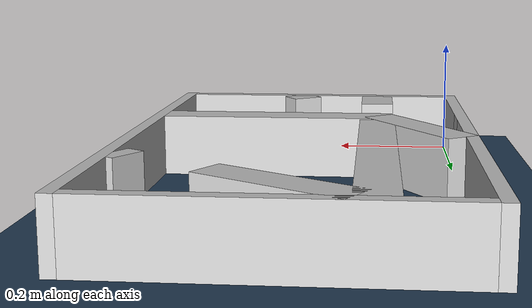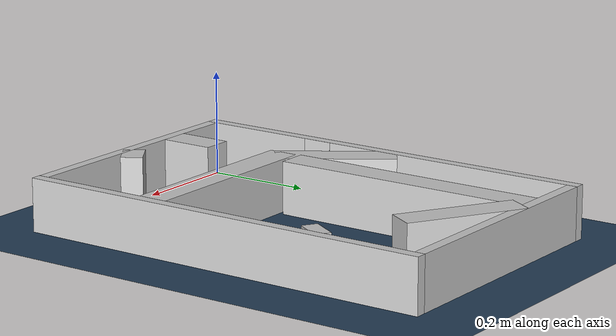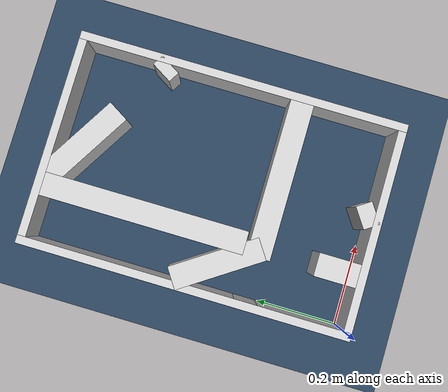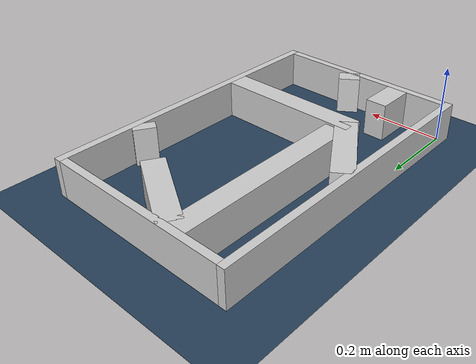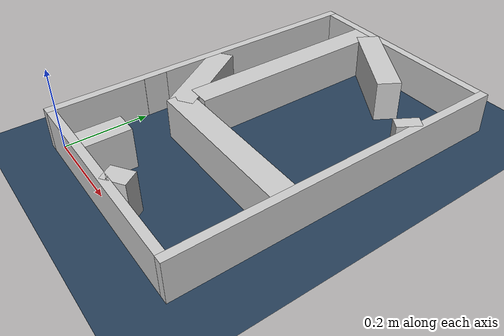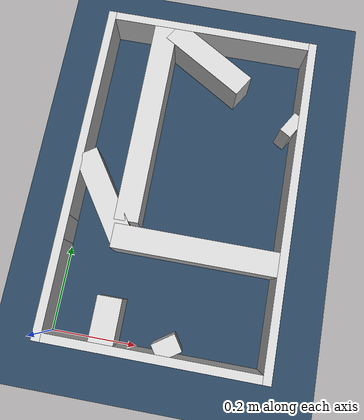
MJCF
<?xml version="1.0" ?>
<mujoco model="generated_real_template">
  <compiler angle="degree"/>
  <option timestep="0.002" integrator="implicitfast" iterations="100" cone="elliptic"/>
  <default>
    <geom density="1"/>
  </default>
  <asset>
    <texture builtin="gradient" height="3072" rgb1="0.3 0.5 0.7" rgb2="0 0 0" type="skybox" width="512"/>
    <texture builtin="checker" height="300" mark="edge" markrgb="0.8 0.8 0.8" name="groundplane" rgb1="0.2 0.3 0.4" rgb2="0.1 0.2 0.3" type="2d" width="300"/>
    <material name="groundplane" reflectance="0.2" texrepeat="5 5" texture="groundplane" texuniform="true"/>
  </asset>
  <worldbody>
    <light dir="0 0 -1" directional="true" pos="0 0 1.5"/>
    <geom name="floor" type="plane" condim="4" friction="0.5 0.005 0.001" material="groundplane" size="0 0 0.05"/>
    <body name="walls">
      <geom name="wall_boundary_left" type="box" condim="4" friction="1.0 0.005 0.0001" rgba="0.8 0.8 0.8 1" pos="-0.010000 0.387500 0.050000" euler="0 0 0.000000" size="0.010000 0.407500 0.050000"/>
      <geom name="wall_boundary_right" type="box" condim="4" friction="1.0 0.005 0.0001" rgba="0.8 0.8 0.8 1" pos="0.500000 0.387500 0.050000" euler="0 0 0.000000" size="0.010000 0.407500 0.050000"/>
      <geom name="wall_boundary_bottom" type="box" condim="4" friction="1.0 0.005 0.0001" rgba="0.8 0.8 0.8 1" pos="0.245000 -0.010000 0.050000" euler="0 0 0.000000" size="0.245000 0.010000 0.050000"/>
      <geom name="wall_boundary_top" type="box" condim="4" friction="1.0 0.005 0.0001" rgba="0.8 0.8 0.8 1" pos="0.245000 0.785000 0.050000" euler="0 0 0.000000" size="0.245000 0.010000 0.050000"/>
      <geom name="wall_inner_1_1" type="box" condim="4" friction="1.0 0.005 0.0001" rgba="0.8 0.8 0.8 1" pos="0.274594 0.016958 0.050000" euler="0 0 123.939570" size="0.020440 0.028500 0.050000"/>
      <geom name="wall_inner_1_2" type="box" condim="4" friction="1.0 0.005 0.0001" rgba="0.8 0.8 0.8 1" pos="0.066442 0.326259 0.050000" euler="0 0 123.939570" size="0.112475 0.028500 0.050000"/>
      <geom name="wall_inner_2_1" type="box" condim="4" friction="1.0 0.005 0.0001" rgba="0.8 0.8 0.8 1" pos="0.131248 0.050992 0.050000" euler="0 0 90.000000" size="0.050992 0.028500 0.050000"/>
      <geom name="wall_inner_2_2" type="box" condim="4" friction="1.0 0.005 0.0001" rgba="0.8 0.8 0.8 1" pos="0.131248 0.524667 0.050000" euler="0 0 90.000000" size="0.250333 0.028500 0.050000"/>
      <geom name="wall_inner_3_1" type="box" condim="4" friction="1.0 0.005 0.0001" rgba="0.8 0.8 0.8 1" pos="0.477198 0.573734 0.050000" euler="0 0 148.800980" size="0.014967 0.028500 0.050000"/>
      <geom name="wall_inner_3_2" type="box" condim="4" friction="1.0 0.005 0.0001" rgba="0.8 0.8 0.8 1" pos="0.249662 0.711530 0.050000" euler="0 0 148.800980" size="0.114072 0.028500 0.050000"/>
      <geom name="wall_inner_4_1" type="box" condim="4" friction="1.0 0.005 0.0001" rgba="0.8 0.8 0.8 1" pos="0.000038 0.237478 0.050000" euler="0 0 0.000000" size="0.000038 0.028500 0.050000"/>
      <geom name="wall_inner_4_2" type="box" condim="4" friction="1.0 0.005 0.0001" rgba="0.8 0.8 0.8 1" pos="0.298299 0.237478 0.050000" euler="0 0 0.000000" size="0.191701 0.028500 0.050000"/>
    </body>
  </worldbody>
</mujoco>
